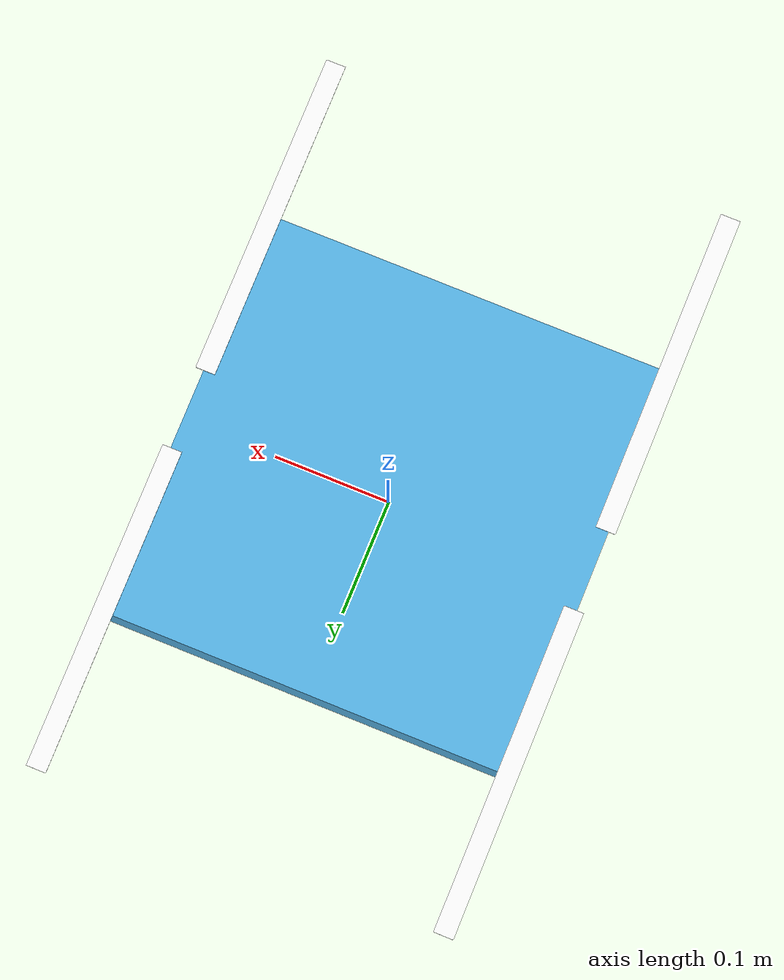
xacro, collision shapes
<?xml version="1.0"?>
<robot name="x500" xmlns:xacro="http://www.ros.org/wiki/xacro">
    <xacro:arg name="base_color" default="Grey"/>
    <xacro:arg name="robot_name" default="drone1"/>

    <!-- *****************INCLUDES************************* -->
    <xacro:include filename="$(find ss_desc)/xacro/materials.xacro"/>
    <xacro:include filename="$(find ss_desc)/xacro/x500/x500_macro.xacro"/>
    <xacro:include filename="$(find ss_desc)/xacro/x500/x500.gazebo"/>

    <!-- *****************BASE LINK************************* -->
    <link name="$(arg robot_name)_base_footprint"/>
    <joint name="$(arg robot_name)_bfp_to_bl" type="fixed">
        <parent link="$(arg robot_name)_base_footprint"/>
        <child link="$(arg robot_name)_base_link"/>
    </joint>

    <link name="$(arg robot_name)_base_link">
        <!-- Visual tags -->
        <visual>
            <origin xyz="0 0 0.025" rpy="0 0 ${pi}"/>
            <geometry>
                <mesh filename="package://ss_desc/xacro/x500/meshes/NXP-HGD-CF.dae"/>
            </geometry>
        </visual>
        <visual>
            <origin xyz="0.174 0.174 0.032" rpy="0 0 -0.45"/>
            <geometry>
                <mesh filename="package://ss_desc/xacro/x500/meshes/5010Base.dae" scale="1 1 1"/>
            </geometry>
        </visual>
        <visual>
            <origin xyz="-0.174 0.174 0.032" rpy="0 0 -0.45"/>
            <geometry>
                <mesh filename="package://ss_desc/xacro/x500/meshes/5010Base.dae" scale="1 1 1"/>
            </geometry>
        </visual>
        <visual>
            <origin xyz="0.174 -0.174 0.032" rpy="0 0 -0.45"/>
            <geometry>
                <mesh filename="package://ss_desc/xacro/x500/meshes/5010Base.dae" scale="1 1 1"/>
            </geometry>
        </visual>
        <visual>
            <origin xyz="-0.174 -0.174 0.032" rpy="0 0 -0.45"/>
            <geometry>
                <mesh filename="package://ss_desc/xacro/x500/meshes/5010Base.dae" scale="1 1 1"/>
            </geometry>
        </visual>

        <!-- Collision tags -->
        <collision name="$(arg robot_name)_base_collision0">
            <origin xyz="0 0 0.025"/>
            <geometry>
                <box size="0.35355339059327373 0.35355339059327373 0.05"/>
            </geometry>
        </collision>
        <collision name="$(arg robot_name)_base_collision1">
            <origin xyz="0 -0.098 -0.123" rpy="-0.35 0 0"/>
            <geometry>
                <box size="0.015 0.015 0.21"/>
            </geometry>
        </collision>
        <collision name="$(arg robot_name)_base_collision2">
            <origin xyz="0 0.098 -0.123" rpy="0.35 0 0"/>
            <geometry>
                <box size="0.015 0.015 0.21"/>
            </geometry>
        </collision>
        <collision name="$(arg robot_name)_base_collision3">
            <origin xyz="0 -0.132 -0.2195"/>
            <geometry>
                <box size="0.25 0.015 0.015"/>
            </geometry>
        </collision>
        <collision name="$(arg robot_name)_base_collision4">
            <origin xyz="0 0.132 -0.2195"/>
            <geometry>
                <box size="0.25 0.015 0.015"/>
            </geometry>
        </collision>

        <!-- Inertial tag -->
        <inertial>
            <mass value="2.0"/>
            <inertia ixx="0.02166666666666667"
                iyy="0.02166666666666667"
                izz="0.04000000000000001"
                ixy="0" iyz="0" ixz="0"/>
        </inertial>
    </link>

    <!-- *****************ROTORS************************* -->
    <link name="$(arg robot_name)_rotor_FL">
        <!-- Visual -->
        <visual>
            <origin xyz="0 0 -0.032"/>
            <geometry>
                <mesh filename="package://ss_desc/xacro/x500/meshes/5010Bell.dae" scale="1 1 1"/>
            </geometry>
            <material name="White"/>
        </visual>
        <visual>
            <origin xyz="-0.022 -0.14638461538461536 -0.016"/>
            <geometry>
                <mesh filename="package://ss_desc/xacro/x500/meshes/1345_prop_cw.stl" scale="0.8461538461538461 0.8461538461538461 0.8461538461538461"/>
            </geometry>
            <material name="Red"/>
        </visual>

        <!-- Collision -->
        <collision>
            <origin rpy="0 0 ${pi/2}"/>
            <geometry>
                <box size="0.2792307692307692 0.016923076923076923 0.0008461538461538462"/>
            </geometry>
        </collision>

        <!-- Inertial -->
        <xacro:box_inertial mass="0.016076923076923075" width="0.016923076923076923" height="0.0008461538461538462" length="0.2792307692307692" o_rpy="0 0 ${pi/2}"/>
    </link>

    <joint name="$(arg robot_name)_base_to_rotor_FL" type="continuous">
        <parent link="$(arg robot_name)_base_link"/>
        <child link="$(arg robot_name)_rotor_FL"/>
        <origin xyz="0.174 0.174 0.06"/>
        <axis xyz="0 0 1"/>
    </joint>

    <link name="$(arg robot_name)_rotor_RR">
        <!-- Visual -->
        <visual>
            <origin xyz="0 0 -0.032"/>
            <geometry>
                <mesh filename="package://ss_desc/xacro/x500/meshes/5010Bell.dae" scale="1 1 1"/>
            </geometry>
            <material name="White"/>
        </visual>
        <visual>
            <origin xyz="-0.022 -0.14638461538461536 -0.016"/>
            <geometry>
                <mesh filename="package://ss_desc/xacro/x500/meshes/1345_prop_cw.stl" scale="0.8461538461538461 0.8461538461538461 0.8461538461538461"/>
            </geometry>
            <material name="Blue"/>
        </visual>

        <!-- Collision -->
        <collision>
            <origin rpy="0 0 ${pi/2}"/>
            <geometry>
                <box size="0.2792307692307692 0.016923076923076923 0.0008461538461538462"/>
            </geometry>
        </collision>

        <!-- Inertial -->
        <xacro:box_inertial mass="0.016076923076923075" width="0.016923076923076923" height="0.0008461538461538462" length="0.2792307692307692" o_rpy="0 0 ${pi/2}"/>
    </link>

    <joint name="$(arg robot_name)_base_to_rotor_RR" type="continuous">
        <parent link="$(arg robot_name)_base_link"/>
        <child link="$(arg robot_name)_rotor_RR"/>
        <origin xyz="-0.174 -0.174 0.06"/>
        <axis xyz="0 0 1"/>
    </joint>

    <link name="$(arg robot_name)_rotor_FR">
        <!-- Visual -->
        <visual>
            <origin xyz="0 0 -0.032"/>
            <geometry>
                <mesh filename="package://ss_desc/xacro/x500/meshes/5010Bell.dae" scale="1 1 1"/>
            </geometry>
            <material name="White"/>
        </visual>
        <visual>
            <origin xyz="-0.022 -0.14638461538461536 -0.016"/>
            <geometry>
                <mesh filename="package://ss_desc/xacro/x500/meshes/1345_prop_ccw.stl" scale="0.8461538461538461 0.8461538461538461 0.8461538461538461"/>
            </geometry>
            <material name="Red"/>
        </visual>

        <!-- Collision -->
        <collision>
            <origin rpy="0 0 ${pi/2}"/>
            <geometry>
                <box size="0.2792307692307692 0.016923076923076923 0.0008461538461538462"/>
            </geometry>
        </collision>

        <!-- Inertial -->
        <xacro:box_inertial mass="0.016076923076923075" width="0.016923076923076923" height="0.0008461538461538462" length="0.2792307692307692" o_rpy="0 0 ${pi/2}"/>
    </link>

    <joint name="$(arg robot_name)_base_to_rotor_FR" type="continuous">
        <parent link="$(arg robot_name)_base_link"/>
        <child link="$(arg robot_name)_rotor_FR"/>
        <origin xyz="0.174 -0.174 0.06"/>
        <axis xyz="0 0 1"/>
    </joint>

    <link name="$(arg robot_name)_rotor_RL">
        <!-- Visual -->
        <visual>
            <origin xyz="0 0 -0.032"/>
            <geometry>
                <mesh filename="package://ss_desc/xacro/x500/meshes/5010Bell.dae" scale="1 1 1"/>
            </geometry>
            <material name="White"/>
        </visual>
        <visual>
            <origin xyz="-0.022 -0.14638461538461536 -0.016"/>
            <geometry>
                <mesh filename="package://ss_desc/xacro/x500/meshes/1345_prop_ccw.stl" scale="0.8461538461538461 0.8461538461538461 0.8461538461538461"/>
            </geometry>
            <material name="Blue"/>
        </visual>

        <!-- Collision -->
        <collision>
            <origin rpy="0 0 ${pi/2}"/>
            <geometry>
                <box size="0.2792307692307692 0.016923076923076923 0.0008461538461538462"/>
            </geometry>
        </collision>

        <!-- Inertial -->
        <xacro:box_inertial mass="0.016076923076923075" width="0.016923076923076923" height="0.0008461538461538462" length="0.2792307692307692" o_rpy="0 0 ${pi/2}"/>
    </link>

    <joint name="$(arg robot_name)_base_to_rotor_RL" type="continuous">
        <parent link="$(arg robot_name)_base_link"/>
        <child link="$(arg robot_name)_rotor_RL"/>
        <origin xyz="-0.174 0.174 0.06"/>
        <axis xyz="0 0 1"/>
    </joint>
</robot>

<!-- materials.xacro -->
<robot>
    <material name="Black">
        <color rgba="0.0 0.0 0.0 1.0"/>
    </material>

    <material name="Blue">
        <color rgba="0 0 1.0 1.0"/>
    </material>

    <material name="Green">
        <color rgba="0.0 0.8 0.0 1.0"/>
    </material>

    <material name="Grey">
        <color rgba="0.2 0.2 0.2 1.0"/>
    </material>

    <material name="Orange">
        <color rgba="1.0 0.423529411765 0.0392156862745 1.0"/>
    </material>

    <material name="Brown">
        <color rgba="0.870588235294 0.811764705882 0.764705882353 1.0"/>
    </material>

    <material name="Red">
        <color rgba="0.80078125 0.12890625 0.1328125 1.0"/>
    </material>

    <material name="White">
        <color rgba="1.0 1.0 1.0 1.0"/>
    </material>

    <material name="Cyan">
        <color rgba="0.58 0.8 1.0 1.0"/>
    </material>

    <material name="Blue2">
        <color rgba="0.02 0.5 0.64 1.0"/>
    </material>
</robot>
